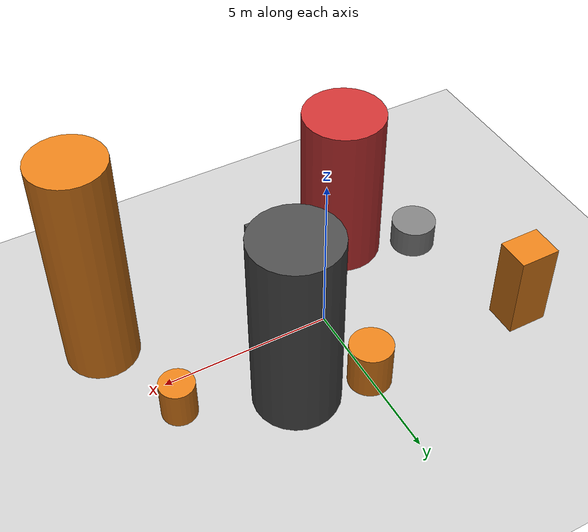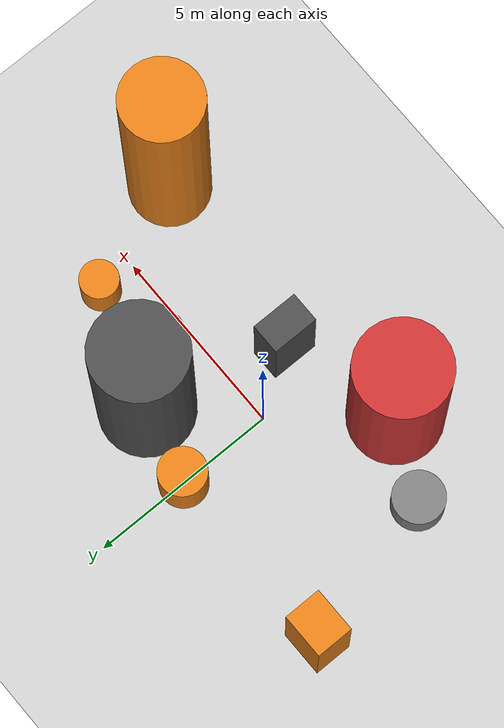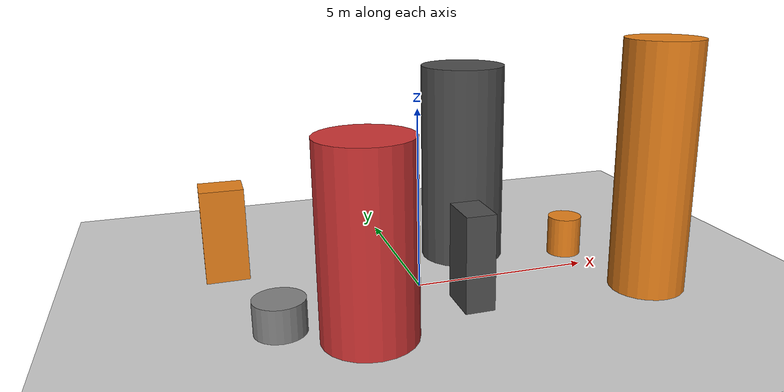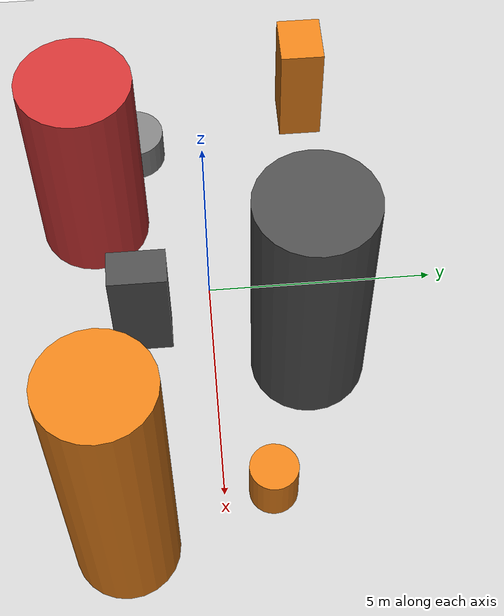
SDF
<?xml version='1.0'?>
<sdf version='1.6'>
  <world name='routeA_rl_v1__support_expansion__rl_train__mixed_3d_low_density_route__000126'>
    <!-- Sun light -->
    <light name='sun' type='directional'>
      <cast_shadows>1</cast_shadows>
      <pose>0 0 10 0 0 0</pose>
      <diffuse>0.8 0.8 0.8 1</diffuse>
      <specular>0.2 0.2 0.2 1</specular>
      <attenuation>
        <range>1000</range>
        <constant>0.9</constant>
        <linear>0.01</linear>
        <quadratic>0.001</quadratic>
      </attenuation>
      <direction>-0.5 0.1 -0.9</direction>
    </light>

    <!-- Ground plane -->
    <model name='ground_plane'>
      <static>1</static>
      <link name='link'>
        <collision name='collision'>
          <geometry>
            <plane>
              <normal>0 0 1</normal>
              <size>100 100</size>
            </plane>
          </geometry>
          <surface>
            <contact>
              <collide_bitmask>65535</collide_bitmask>
              <ode/>
            </contact>
            <friction>
              <ode>
                <mu>100</mu>
                <mu2>50</mu2>
              </ode>
              <torsional><ode/></torsional>
            </friction>
            <bounce/>
          </surface>
          <max_contacts>10</max_contacts>
        </collision>
        <visual name='visual'>
          <cast_shadows>0</cast_shadows>
          <geometry>
            <plane>
              <normal>0 0 1</normal>
              <size>100 100</size>
            </plane>
          </geometry>
          <material>
            <script>
              <uri>file://media/materials/scripts/gazebo.material</uri>
              <n>Gazebo/Grey</n>
            </script>
          </material>
        </visual>
      </link>
    </model>

    <!-- Environment -->
    <magnetic_field>6e-06 2.3e-05 -4.2e-05</magnetic_field>
    <atmosphere type='adiabatic'/>
    <physics name='default_physics' default='0' type='ode'>
      <gravity>0 0 -9.8</gravity>
      <max_step_size>0.004</max_step_size>
      <real_time_factor>1</real_time_factor>
      <real_time_update_rate>250</real_time_update_rate>
    </physics>
    <scene>
      <ambient>0.4 0.4 0.4 1</ambient>
      <background>0.7 0.7 0.7 1</background>
      <shadows>1</shadows>
    </scene>
    <wind/>
    <spherical_coordinates>
      <surface_model>EARTH_WGS84</surface_model>
      <latitude_deg>0</latitude_deg>
      <longitude_deg>0</longitude_deg>
      <elevation>0</elevation>
      <heading_deg>0</heading_deg>
    </spherical_coordinates>

    <!-- ============ OBSTACLES (8) ============ -->
    <model name='low_obs_0'>
      <static>1</static>
      <link name='link'>
        <visual name='visual'>
          <geometry>
            <cylinder>
              <radius>0.6670</radius>
              <length>0.8827</length>
            </cylinder>
          </geometry>
          <material>
            <script>
              <n>Gazebo/Grey</n>
              <uri>file://media/materials/scripts/gazebo.material</uri>
            </script>
            <ambient>0.5 0.5 0.5 1</ambient>
          </material>
        </visual>
        <collision name='collision'>
          <geometry>
            <cylinder>
              <radius>0.6670</radius>
              <length>0.8827</length>
            </cylinder>
          </geometry>
          <max_contacts>10</max_contacts>
          <surface>
            <contact><ode/></contact>
            <bounce/>
            <friction>
              <ode><mu>1</mu><mu2>1</mu2></ode>
              <torsional><ode/></torsional>
            </friction>
          </surface>
        </collision>
      </link>
      <pose>-4.0000 -1.5000 0.4413 0 0 0.0000</pose>
    </model>

    <model name='low_obs_1'>
      <static>1</static>
      <link name='link'>
        <visual name='visual'>
          <geometry>
            <cylinder>
              <radius>0.6187</radius>
              <length>1.4148</length>
            </cylinder>
          </geometry>
          <material>
            <script>
              <n>Gazebo/Orange</n>
              <uri>file://media/materials/scripts/gazebo.material</uri>
            </script>
            <ambient>0.9 0.5 0.1 1</ambient>
          </material>
        </visual>
        <collision name='collision'>
          <geometry>
            <cylinder>
              <radius>0.6187</radius>
              <length>1.4148</length>
            </cylinder>
          </geometry>
          <max_contacts>10</max_contacts>
          <surface>
            <contact><ode/></contact>
            <bounce/>
            <friction>
              <ode><mu>1</mu><mu2>1</mu2></ode>
              <torsional><ode/></torsional>
            </friction>
          </surface>
        </collision>
      </link>
      <pose>0.0000 2.5000 0.7074 0 0 0.0000</pose>
    </model>

    <model name='low_obs_2'>
      <static>1</static>
      <link name='link'>
        <visual name='visual'>
          <geometry>
            <cylinder>
              <radius>0.5004</radius>
              <length>1.1727</length>
            </cylinder>
          </geometry>
          <material>
            <script>
              <n>Gazebo/Orange</n>
              <uri>file://media/materials/scripts/gazebo.material</uri>
            </script>
            <ambient>0.9 0.5 0.1 1</ambient>
          </material>
        </visual>
        <collision name='collision'>
          <geometry>
            <cylinder>
              <radius>0.5004</radius>
              <length>1.1727</length>
            </cylinder>
          </geometry>
          <max_contacts>10</max_contacts>
          <surface>
            <contact><ode/></contact>
            <bounce/>
            <friction>
              <ode><mu>1</mu><mu2>1</mu2></ode>
              <torsional><ode/></torsional>
            </friction>
          </surface>
        </collision>
      </link>
      <pose>5.0000 1.0000 0.5863 0 0 0.0000</pose>
    </model>

    <model name='tall_obs_0'>
      <static>1</static>
      <link name='link'>
        <visual name='visual'>
          <geometry>
            <cylinder>
              <radius>1.2117</radius>
              <length>4.9832</length>
            </cylinder>
          </geometry>
          <material>
            <script>
              <n>Gazebo/Red</n>
              <uri>file://media/materials/scripts/gazebo.material</uri>
            </script>
            <ambient>0.8 0.2 0.2 1</ambient>
          </material>
        </visual>
        <collision name='collision'>
          <geometry>
            <cylinder>
              <radius>1.2117</radius>
              <length>4.9832</length>
            </cylinder>
          </geometry>
          <max_contacts>10</max_contacts>
          <surface>
            <contact><ode/></contact>
            <bounce/>
            <friction>
              <ode><mu>1</mu><mu2>1</mu2></ode>
              <torsional><ode/></torsional>
            </friction>
          </surface>
        </collision>
      </link>
      <pose>-2.0000 -2.5000 2.4916 0 0 0.0000</pose>
    </model>

    <model name='tall_obs_1'>
      <static>1</static>
      <link name='link'>
        <visual name='visual'>
          <geometry>
            <cylinder>
              <radius>1.2199</radius>
              <length>5.7987</length>
            </cylinder>
          </geometry>
          <material>
            <script>
              <n>Gazebo/DarkGrey</n>
              <uri>file://media/materials/scripts/gazebo.material</uri>
            </script>
            <ambient>0.3 0.3 0.3 1</ambient>
          </material>
        </visual>
        <collision name='collision'>
          <geometry>
            <cylinder>
              <radius>1.2199</radius>
              <length>5.7987</length>
            </cylinder>
          </geometry>
          <max_contacts>10</max_contacts>
          <surface>
            <contact><ode/></contact>
            <bounce/>
            <friction>
              <ode><mu>1</mu><mu2>1</mu2></ode>
              <torsional><ode/></torsional>
            </friction>
          </surface>
        </collision>
      </link>
      <pose>2.0000 2.0000 2.8993 0 0 0.0000</pose>
    </model>

    <model name='tall_obs_2'>
      <static>1</static>
      <link name='link'>
        <visual name='visual'>
          <geometry>
            <cylinder>
              <radius>1.0425</radius>
              <length>6.8204</length>
            </cylinder>
          </geometry>
          <material>
            <script>
              <n>Gazebo/Orange</n>
              <uri>file://media/materials/scripts/gazebo.material</uri>
            </script>
            <ambient>0.9 0.5 0.1 1</ambient>
          </material>
        </visual>
        <collision name='collision'>
          <geometry>
            <cylinder>
              <radius>1.0425</radius>
              <length>6.8204</length>
            </cylinder>
          </geometry>
          <max_contacts>10</max_contacts>
          <surface>
            <contact><ode/></contact>
            <bounce/>
            <friction>
              <ode><mu>1</mu><mu2>1</mu2></ode>
              <torsional><ode/></torsional>
            </friction>
          </surface>
        </collision>
      </link>
      <pose>6.0000 -2.0000 3.4102 0 0 0.0000</pose>
    </model>

    <model name='med_obs_0'>
      <static>1</static>
      <link name='link'>
        <visual name='visual'>
          <geometry>
            <box>
              <size>1.1916 0.9905 2.6599</size>
            </box>
          </geometry>
          <material>
            <script>
              <n>Gazebo/Orange</n>
              <uri>file://media/materials/scripts/gazebo.material</uri>
            </script>
            <ambient>0.9 0.5 0.1 1</ambient>
          </material>
        </visual>
        <collision name='collision'>
          <geometry>
            <box>
              <size>1.1916 0.9905 2.6599</size>
            </box>
          </geometry>
          <max_contacts>10</max_contacts>
          <surface>
            <contact><ode/></contact>
            <bounce/>
            <friction>
              <ode><mu>1</mu><mu2>1</mu2></ode>
              <torsional><ode/></torsional>
            </friction>
          </surface>
        </collision>
      </link>
      <pose>-5.0000 2.5000 1.3300 0 0 0.0000</pose>
    </model>

    <model name='med_obs_1'>
      <static>1</static>
      <link name='link'>
        <visual name='visual'>
          <geometry>
            <box>
              <size>0.8118 1.2389 2.6198</size>
            </box>
          </geometry>
          <material>
            <script>
              <n>Gazebo/DarkGrey</n>
              <uri>file://media/materials/scripts/gazebo.material</uri>
            </script>
            <ambient>0.3 0.3 0.3 1</ambient>
          </material>
        </visual>
        <collision name='collision'>
          <geometry>
            <box>
              <size>0.8118 1.2389 2.6198</size>
            </box>
          </geometry>
          <max_contacts>10</max_contacts>
          <surface>
            <contact><ode/></contact>
            <bounce/>
            <friction>
              <ode><mu>1</mu><mu2>1</mu2></ode>
              <torsional><ode/></torsional>
            </friction>
          </surface>
        </collision>
      </link>
      <pose>1.0000 -1.5000 1.3099 0 0 0.0000</pose>
    </model>

    <!-- GUI camera -->
    <gui fullscreen='0'>
      <camera name='user_camera'>
        <pose>-15 0 18 0 0.85 0.15</pose>
        <view_controller>orbit</view_controller>
        <projection_type>perspective</projection_type>
      </camera>
    </gui>
  </world>
</sdf>
